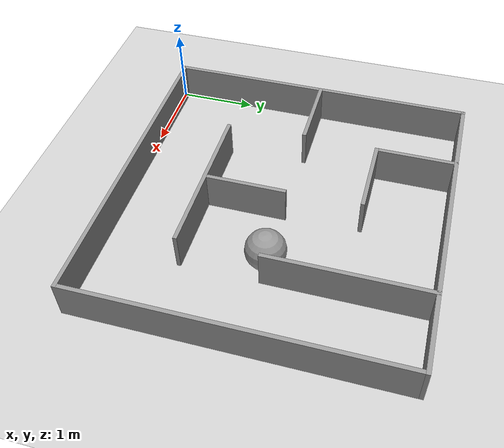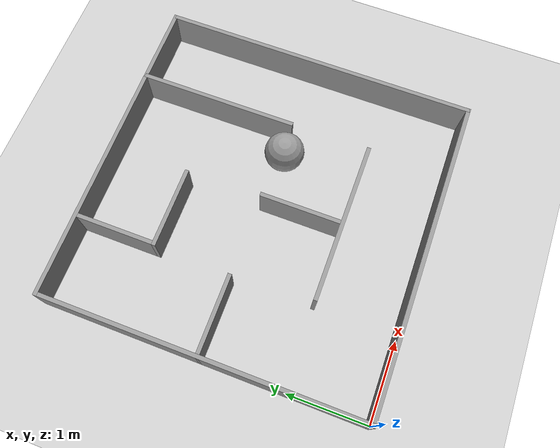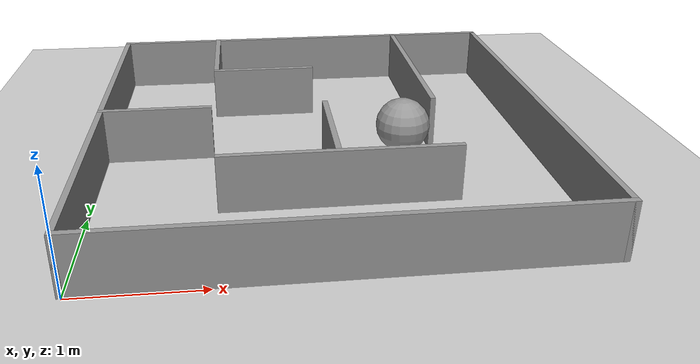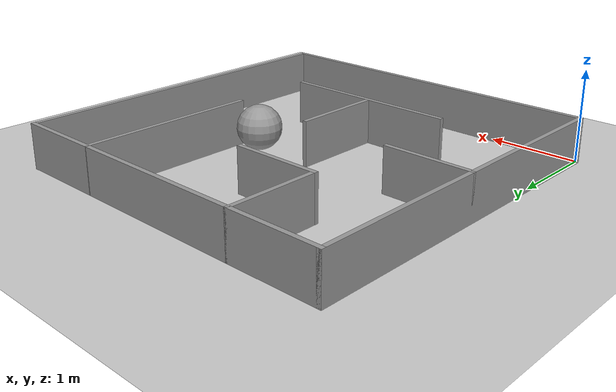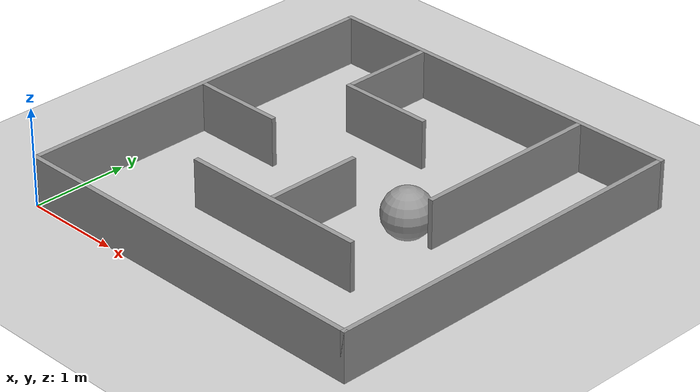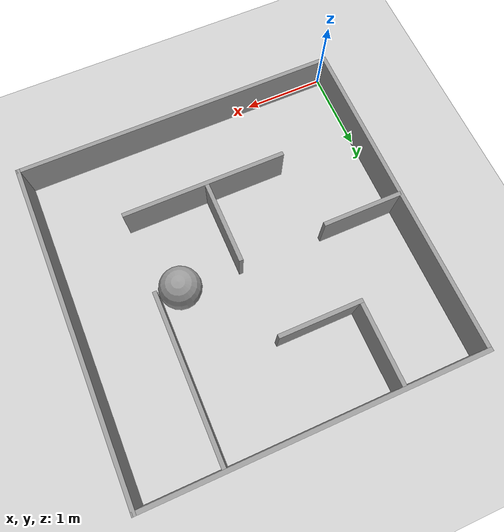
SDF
<sdf version="1.6">
 <world name="default">
  <light name="sun" type="directional">
   <pose>0 0 10 0 -0 0</pose>
   <diffuse>0.8 0.8 0.8 1</diffuse>
   <specular>0.2 0.2 0.2 1</specular>
   <attenuation>
    <range>1000</range>
    <constant>0.9</constant>
    <linear>0.01</linear>
    <quadratic>0.001</quadratic>
   </attenuation>
   <direction>-0.5 0.1 -0.9</direction>
  </light>
  <model name="ground_plane">
   <static>1</static>
   <link name="link">
    <collision name="collision">
     <geometry><plane><normal>0 0 1</normal><size>100 100</size></plane></geometry>
     <surface>
      <contact><collide_bitmask>65535</collide_bitmask></contact>
      <friction><ode><mu>100</mu><mu2>50</mu2></ode></friction>
     </surface>
    </collision>
    <visual name="visual">
     <cast_shadows>0</cast_shadows>
     <geometry><plane><normal>0 0 1</normal><size>100 100</size></plane></geometry>
     <material>
      <script><uri>file://media/materials/scripts/gazebo.material</uri><name>Gazebo/Grey</name></script>
     </material>
    </visual>
   </link>
  </model>
  <gravity>0 0 -9.8</gravity>
  <magnetic_field>6e-06 2.3e-05 -4.2e-05</magnetic_field>
  <atmosphere type="adiabatic"/>
  <physics name="default_physics" default="0" type="ode">
   <max_step_size>0.001</max_step_size>
   <real_time_factor>1</real_time_factor>
   <real_time_update_rate>1000</real_time_update_rate>
  </physics>
  <scene><ambient>0.4 0.4 0.4 1</ambient><background>0.7 0.7 0.7 1</background><shadows>1</shadows></scene>
  <audio><device>default</device></audio>
  <spherical_coordinates>
   <surface_model>EARTH_WGS84</surface_model>
   <latitude_deg>0</latitude_deg>
   <longitude_deg>0</longitude_deg>
   <elevation>0</elevation>
   <heading_deg>0</heading_deg>
  </spherical_coordinates>
  <model name="turtlebot3_maze_navigation">
   <pose>1.96567 2.00493 0 0 -0 0</pose>
   <link name="Wall_11">
    <collision name="Wall_11_Collision">
     <geometry><box><size>4 0.05 0.5</size></box></geometry>
     <pose>0 0 0.25 0 -0 0</pose>
    </collision>
    <visual name="Wall_11_Visual">
     <pose>0 0 0.25 0 -0 0</pose>
     <geometry><box><size>4 0.05 0.5</size></box></geometry>
     <material>
      <script><uri>file://media/materials/scripts/gazebo.material</uri><name>Gazebo/Grey</name></script>
      <ambient>1 1 1 1</ambient>
     </material>
     <meta><layer>0</layer></meta>
    </visual>
    <pose>-0 1.975 0 0 -0 0</pose>
   </link>
   <link name="Ball">
    <collision name="Ball_Collision">
     <geometry><sphere><radius>0.25</radius></sphere></geometry>
     <pose>0.75 0 0.25 0 -0 0</pose>
    </collision>
    <visual name="Ball_Visual">
     <pose>0.75 0 0.25 0 -0 0</pose>
     <geometry><sphere><radius>0.25</radius></sphere></geometry>
     <material>
      <script><name>Gazebo/Grey</name><uri>file://media/materials/scripts/gazebo.material</uri></script>
      <shader type="vertex"><normal_map>__default__</normal_map></shader>
      <ambient>0.3 0.3 0.3 1</ambient>
      <diffuse>0.7 0.7 0.7 1</diffuse>
      <specular>0.01 0.01 0.01 1</specular>
      <emissive>0 0 0 1</emissive>
     </material>
    </visual>
   </link>
   <link name="Wall_13">
    <collision name="Wall_13_Collision">
     <geometry><box><size>2 0.05 0.5</size></box></geometry>
     <pose>0 0 0.25 0 -0 0</pose>
    </collision>
    <visual name="Wall_13_Visual">
     <pose>0 0 0.25 0 -0 0</pose>
     <geometry><box><size>2 0.05 0.5</size></box></geometry>
     <material>
      <script><uri>file://media/materials/scripts/gazebo.material</uri><name>Gazebo/Grey</name></script>
      <ambient>1 1 1 1</ambient>
     </material>
     <meta><layer>0</layer></meta>
    </visual>
    <pose>0.05 -0.975 0 0 -0 3.14159</pose>
   </link>
   <link name="Wall_16">
    <collision name="Wall_16_Collision">
     <geometry><box><size>1 0.05 0.5</size></box></geometry>
     <pose>0 0 0.25 0 -0 0</pose>
    </collision>
    <visual name="Wall_16_Visual">
     <pose>0 0 0.25 0 -0 0</pose>
     <geometry><box><size>1 0.05 0.5</size></box></geometry>
     <material>
      <script><uri>file://media/materials/scripts/gazebo.material</uri><name>Gazebo/Grey</name></script>
      <ambient>1 1 1 1</ambient>
     </material>
     <meta><layer>0</layer></meta>
    </visual>
    <pose>0.025 -0.45 0 0 -0 -1.5708</pose>
   </link>
   <link name="Wall_25">
    <collision name="Wall_25_Collision">
     <geometry><box><size>2 0.05 0.5</size></box></geometry>
     <pose>0 0 0.25 0 -0 0</pose>
    </collision>
    <visual name="Wall_25_Visual">
     <pose>0 0 0.25 0 -0 0</pose>
     <geometry><box><size>2 0.05 0.5</size></box></geometry>
     <material>
      <script><uri>file://media/materials/scripts/gazebo.material</uri><name>Gazebo/Grey</name></script>
      <ambient>1 1 1 1</ambient>
     </material>
     <meta><layer>0</layer></meta>
    </visual>
    <pose>1.025 1 0 0 -0 -1.5708</pose>
   </link>
   <link name="Wall_27">
    <collision name="Wall_27_Collision">
     <geometry><box><size>1 0.05 0.5</size></box></geometry>
     <pose>0 0 0.25 0 -0 0</pose>
    </collision>
    <visual name="Wall_27_Visual">
     <pose>0 0 0.25 0 -0 0</pose>
     <geometry><box><size>1 0.05 0.5</size></box></geometry>
     <material>
      <script><uri>file://media/materials/scripts/gazebo.material</uri><name>Gazebo/Grey</name></script>
      <ambient>1 1 1 1</ambient>
     </material>
     <meta><layer>0</layer></meta>
    </visual>
    <pose>-0.975 1.5 0 0 -0 -1.5708</pose>
   </link>
   <link name="Wall_33">
    <collision name="Wall_33_Collision">
     <geometry><box><size>1 0.05 0.5</size></box></geometry>
     <pose>0 0 0.25 0 -0 0</pose>
    </collision>
    <visual name="Wall_33_Visual">
     <pose>0 0 0.25 0 -0 0</pose>
     <geometry><box><size>1 0.05 0.5</size></box></geometry>
     <material>
      <script><uri>file://media/materials/scripts/gazebo.material</uri><name>Gazebo/Grey</name></script>
      <ambient>1 1 1 1</ambient>
     </material>
     <meta><layer>0</layer></meta>
    </visual>
    <pose>-0.5 0.975 0 0 -0 0</pose>
   </link>
   <link name="Wall_36">
    <collision name="Wall_36_Collision">
     <geometry><box><size>1 0.05 0.5</size></box></geometry>
     <pose>0 0 0.25 0 -0 0</pose>
    </collision>
    <visual name="Wall_36_Visual">
     <pose>0 0 0.25 0 -0 0</pose>
     <geometry><box><size>1 0.05 0.5</size></box></geometry>
     <material>
      <script><uri>file://media/materials/scripts/gazebo.material</uri><name>Gazebo/Grey</name></script>
      <ambient>1 1 1 1</ambient>
     </material>
     <meta><layer>0</layer></meta>
    </visual>
    <pose>-1.5 0.025 0 0 -0 0</pose>
   </link>
   <link name="Wall_5">
    <collision name="Wall_5_Collision">
     <geometry><box><size>4 0.05 0.5</size></box></geometry>
     <pose>0 0 0.25 0 -0 0</pose>
    </collision>
    <visual name="Wall_5_Visual">
     <pose>0 0 0.25 0 -0 0</pose>
     <geometry><box><size>4 0.05 0.5</size></box></geometry>
     <material>
      <script><uri>file://media/materials/scripts/gazebo.material</uri><name>Gazebo/Grey</name></script>
      <ambient>1 1 1 1</ambient>
     </material>
     <meta><layer>0</layer></meta>
    </visual>
    <pose>-1.975 -0 0 0 -0 1.5708</pose>
   </link>
   <link name="Wall_7">
    <collision name="Wall_7_Collision">
     <geometry><box><size>4 0.05 0.5</size></box></geometry>
     <pose>0 0 0.25 0 -0 0</pose>
    </collision>
    <visual name="Wall_7_Visual">
     <pose>0 0 0.25 0 -0 0</pose>
     <geometry><box><size>4 0.05 0.5</size></box></geometry>
     <material>
      <script><uri>file://media/materials/scripts/gazebo.material</uri><name>Gazebo/Grey</name></script>
      <ambient>1 1 1 1</ambient>
     </material>
     <meta><layer>0</layer></meta>
    </visual>
    <pose>-0 -1.975 0 0 -0 0</pose>
   </link>
   <link name="Wall_9">
    <collision name="Wall_9_Collision">
     <geometry><box><size>4 0.05 0.5</size></box></geometry>
     <pose>0 0 0.25 0 -0 0</pose>
    </collision>
    <visual name="Wall_9_Visual">
     <pose>0 0 0.25 0 -0 0</pose>
     <geometry><box><size>4 0.05 0.5</size></box></geometry>
     <material>
      <script><uri>file://media/materials/scripts/gazebo.material</uri><name>Gazebo/Grey</name></script>
      <ambient>1 1 1 1</ambient>
     </material>
     <meta><layer>0</layer></meta>
    </visual>
    <pose>1.975 -0 0 0 -0 1.5708</pose>
   </link>
   <static>1</static>
  </model>
 </world>
</sdf>
